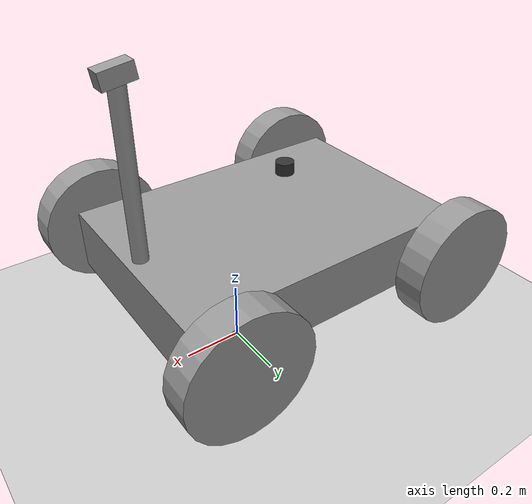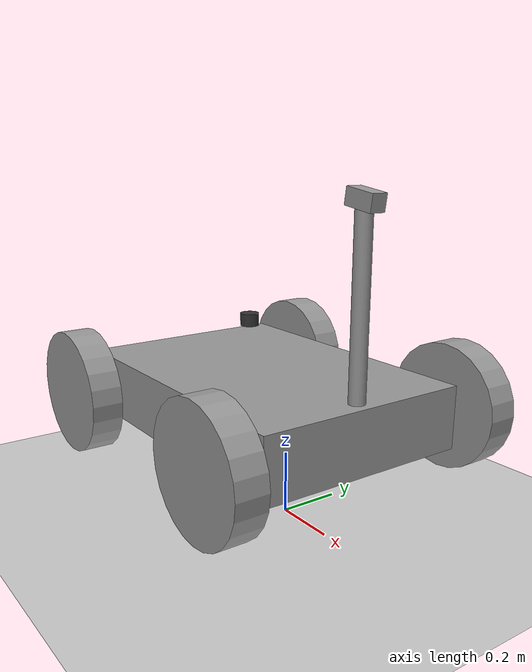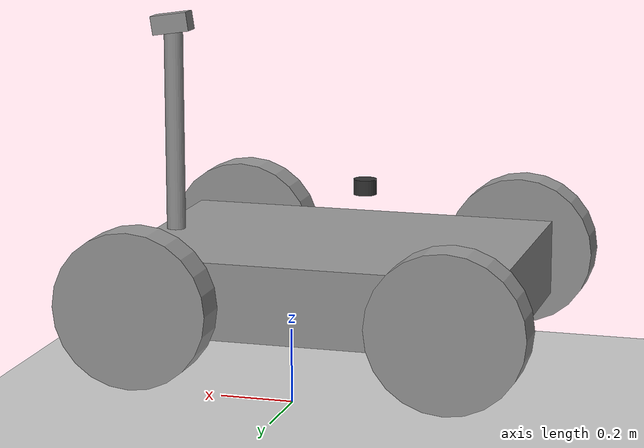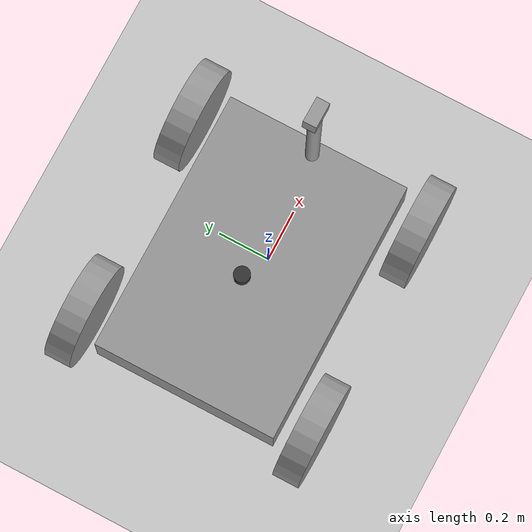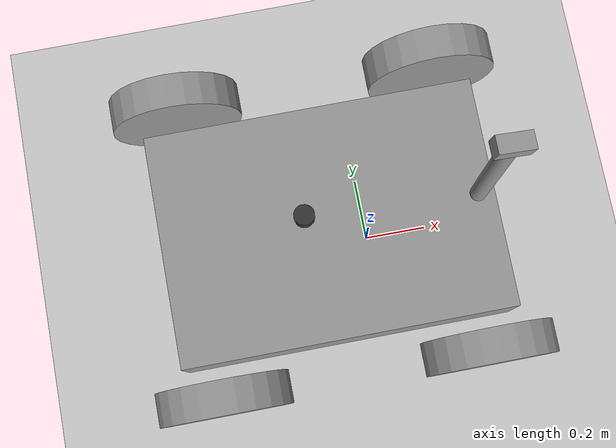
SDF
<sdf version="1.7">
	<world name="test_world">
		<plugin
			filename="ignition-gazebo-physics-system"
			name="gz::sim::systems::Physics">
		</plugin>
		<plugin
			filename="ignition-gazebo-sensors-system"
			name="gz::sim::systems::Sensors">
			<render_engine>ogre</render_engine>
		</plugin>
		<plugin
			filename="ignition-gazebo-user-commands-system"
			name="gz::sim::systems::UserCommands">
		</plugin>
		<plugin
			filename="ignition-gazebo-scene-broadcaster-system"
			name="gz::sim::systems::SceneBroadcaster">
		</plugin>

		<include>
			<uri>
			https://fuel.gazebosim.org/1.0/OpenRobotics/models/Sun
			</uri>
		</include>

		<include>
			<uri>
				ground_plane
			</uri>
		</include>

        <include>
			<pose>0 0 0.5 0 0 0</pose>
            <uri>robot_rover</uri>
        </include>

	</world>
</sdf>
